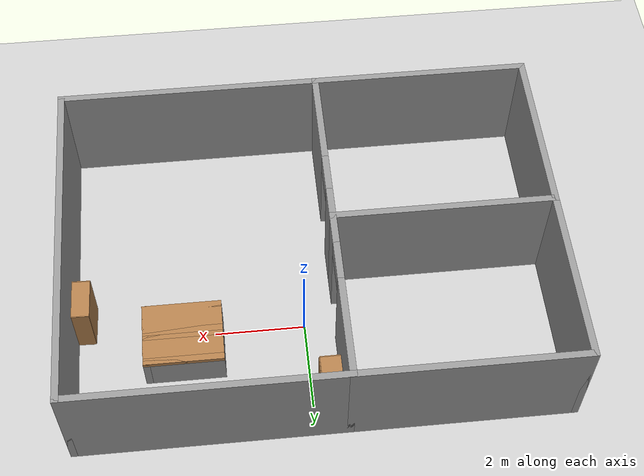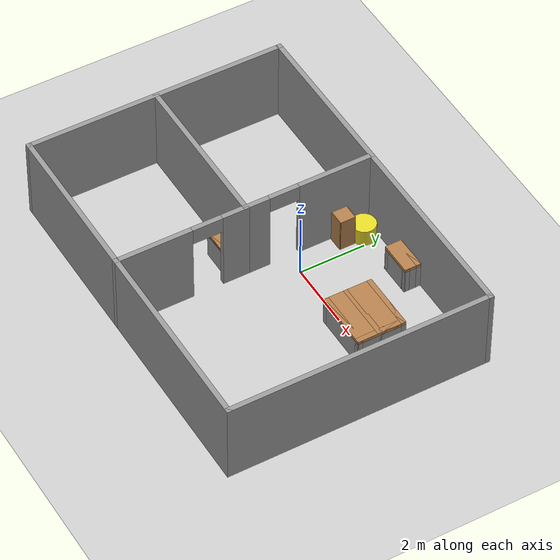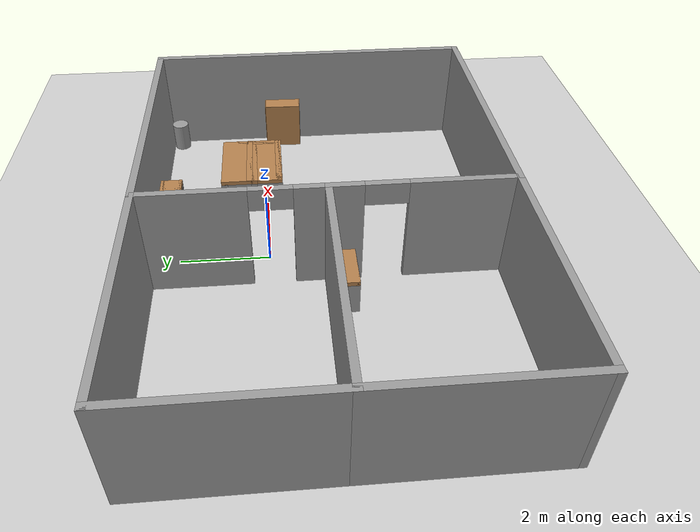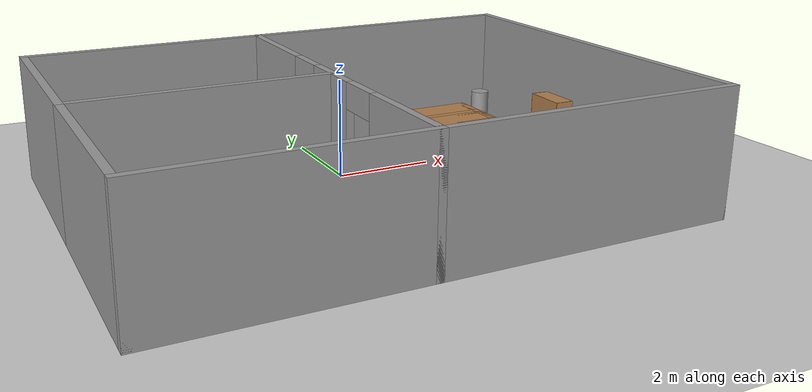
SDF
<sdf version="1.6">
 <world name="default">
  <model name="ground_plane">
   <static>1</static>
   <link name="link">
    <collision name="collision">
     <geometry><plane><normal>0 0 1</normal><size>100 100</size></plane></geometry>
     <surface><friction><ode><mu>100</mu><mu2>50</mu2></ode></friction></surface>
    </collision>
    <visual name="visual">
     <cast_shadows>0</cast_shadows>
     <geometry><plane><normal>0 0 1</normal><size>100 100</size></plane></geometry>
     <material>
      <script><uri>file://media/materials/scripts/gazebo.material</uri><name>Gazebo/Grey</name></script>
     </material>
    </visual>
   </link>
  </model>
  <model name="project.world">
   <pose>-0.23315 -1.25474 0 0 -0 0</pose>
   <link name="Wall_16">
    <collision name="Wall_16_Collision">
     <geometry><box><size>5 0.15 2.5</size></box></geometry>
     <pose>0 0 1.25 0 -0 0</pose>
    </collision>
    <visual name="Wall_16_Visual">
     <pose>0 0 1.25 0 -0 0</pose>
     <geometry><box><size>5 0.15 2.5</size></box></geometry>
     <material>
      <script><uri>file://media/materials/scripts/gazebo.material</uri><name>Gazebo/Grey</name></script>
      <ambient>1 1 1 1</ambient>
     </material>
     <meta><layer>0</layer></meta>
    </visual>
    <pose>-2.925 -3.85 0 0 -0 0</pose>
   </link>
   <link name="Wall_18">
    <collision name="Wall_18_Collision">
     <geometry><box><size>4 0.15 2.5</size></box></geometry>
     <pose>0 0 1.25 0 -0 0</pose>
    </collision>
    <visual name="Wall_18_Visual">
     <pose>0 0 1.25 0 -0 0</pose>
     <geometry><box><size>4 0.15 2.5</size></box></geometry>
     <material>
      <script><uri>file://media/materials/scripts/gazebo.material</uri><name>Gazebo/Grey</name></script>
      <ambient>1 1 1 1</ambient>
     </material>
     <meta><layer>0</layer></meta>
    </visual>
    <pose>-5.35 -1.925 0 0 -0 1.5708</pose>
   </link>
   <link name="Wall_19">
    <collision name="Wall_19_Collision">
     <geometry><box><size>4 0.15 2.5</size></box></geometry>
     <pose>0 0 1.25 0 -0 0</pose>
    </collision>
    <visual name="Wall_19_Visual">
     <pose>0 0 1.25 0 -0 0</pose>
     <geometry><box><size>4 0.15 2.5</size></box></geometry>
     <material>
      <script><uri>file://media/materials/scripts/gazebo.material</uri><name>Gazebo/Grey</name></script>
      <ambient>1 1 1 1</ambient>
     </material>
     <meta><layer>0</layer></meta>
    </visual>
    <pose>-5.35 1.925 0 0 -0 1.5708</pose>
   </link>
   <link name="Wall_20">
    <collision name="Wall_20_Collision">
     <geometry><box><size>5 0.15 2.5</size></box></geometry>
     <pose>0 0 1.25 0 -0 0</pose>
    </collision>
    <visual name="Wall_20_Visual">
     <pose>0 0 1.25 0 -0 0</pose>
     <geometry><box><size>5 0.15 2.5</size></box></geometry>
     <material>
      <script><uri>file://media/materials/scripts/gazebo.material</uri><name>Gazebo/Grey</name></script>
      <ambient>1 1 1 1</ambient>
     </material>
     <meta><layer>0</layer></meta>
    </visual>
    <pose>-2.925 3.85 0 0 -0 0</pose>
   </link>
   <link name="Wall_21">
    <pose>-0.5 1.925 0 0 0 -1.5708</pose>
    <visual name="Wall_21_Visual_0">
     <pose>-0.8375 0 1.25 0 -0 0</pose>
     <geometry><box><size>2.325 0.15 2.5</size></box></geometry>
     <material>
      <script><uri>file://media/materials/scripts/gazebo.material</uri><name>Gazebo/Grey</name></script>
      <ambient>1 1 1 1</ambient>
     </material>
     <meta><layer>0</layer></meta>
    </visual>
    <collision name="Wall_21_Collision_0">
     <geometry><box><size>2.325 0.15 2.5</size></box></geometry>
     <pose>-0.8375 0 1.25 0 -0 0</pose>
    </collision>
    <visual name="Wall_21_Visual_1">
     <pose>1.6125 0 1.25 0 -0 0</pose>
     <geometry><box><size>0.775 0.15 2.5</size></box></geometry>
     <material>
      <script><uri>file://media/materials/scripts/gazebo.material</uri><name>Gazebo/Grey</name></script>
      <ambient>1 1 1 1</ambient>
     </material>
     <meta><layer>0</layer></meta>
    </visual>
    <collision name="Wall_21_Collision_1">
     <geometry><box><size>0.775 0.15 2.5</size></box></geometry>
     <pose>1.6125 0 1.25 0 -0 0</pose>
    </collision>
    <visual name="Wall_21_Visual_2">
     <pose>0.775 0 2.25 0 -0 0</pose>
     <geometry><box><size>0.9 0.15 0.5</size></box></geometry>
     <material>
      <script><uri>file://media/materials/scripts/gazebo.material</uri><name>Gazebo/Grey</name></script>
      <ambient>1 1 1 1</ambient>
     </material>
     <meta><layer>0</layer></meta>
    </visual>
    <collision name="Wall_21_Collision_2">
     <geometry><box><size>0.9 0.15 0.5</size></box></geometry>
     <pose>0.775 0 2.25 0 -0 0</pose>
    </collision>
   </link>
   <link name="Wall_22">
    <collision name="Wall_22_Collision">
     <geometry><box><size>5 0.15 2.5</size></box></geometry>
     <pose>0 0 1.25 0 -0 0</pose>
    </collision>
    <visual name="Wall_22_Visual">
     <pose>0 0 1.25 0 -0 0</pose>
     <geometry><box><size>5 0.15 2.5</size></box></geometry>
     <material>
      <script><uri>file://media/materials/scripts/gazebo.material</uri><name>Gazebo/Grey</name></script>
      <ambient>1 1 1 1</ambient>
     </material>
     <meta><layer>0</layer></meta>
    </visual>
    <pose>-2.925 0 0 0 -0 3.14159</pose>
   </link>
   <link name="Wall_25">
    <pose>-0.5 -1.925 0 0 0 -1.5708</pose>
    <visual name="Wall_25_Visual_0">
     <pose>-1.6025 0 1.25 0 -0 0</pose>
     <geometry><box><size>0.795 0.15 2.5</size></box></geometry>
     <material>
      <script><uri>file://media/materials/scripts/gazebo.material</uri><name>Gazebo/Grey</name></script>
      <ambient>1 1 1 1</ambient>
     </material>
     <meta><layer>0</layer></meta>
    </visual>
    <collision name="Wall_25_Collision_0">
     <geometry><box><size>0.795 0.15 2.5</size></box></geometry>
     <pose>-1.6025 0 1.25 0 -0 0</pose>
    </collision>
    <visual name="Wall_25_Visual_1">
     <pose>0.8475 0 1.25 0 -0 0</pose>
     <geometry><box><size>2.305 0.15 2.5</size></box></geometry>
     <material>
      <script><uri>file://media/materials/scripts/gazebo.material</uri><name>Gazebo/Grey</name></script>
      <ambient>1 1 1 1</ambient>
     </material>
     <meta><layer>0</layer></meta>
    </visual>
    <collision name="Wall_25_Collision_1">
     <geometry><box><size>2.305 0.15 2.5</size></box></geometry>
     <pose>0.8475 0 1.25 0 -0 0</pose>
    </collision>
    <visual name="Wall_25_Visual_2">
     <pose>-0.755 0 2.25 0 -0 0</pose>
     <geometry><box><size>0.9 0.15 0.5</size></box></geometry>
     <material>
      <script><uri>file://media/materials/scripts/gazebo.material</uri><name>Gazebo/Grey</name></script>
      <ambient>1 1 1 1</ambient>
     </material>
     <meta><layer>0</layer></meta>
    </visual>
    <collision name="Wall_25_Collision_2">
     <geometry><box><size>0.9 0.15 0.5</size></box></geometry>
     <pose>-0.755 0 2.25 0 -0 0</pose>
    </collision>
   </link>
   <link name="Wall_27">
    <collision name="Wall_27_Collision">
     <geometry><box><size>6 0.15 2.5</size></box></geometry>
     <pose>0 0 1.25 0 -0 0</pose>
    </collision>
    <visual name="Wall_27_Visual">
     <pose>0 0 1.25 0 -0 0</pose>
     <geometry><box><size>6 0.15 2.5</size></box></geometry>
     <material>
      <script><uri>file://media/materials/scripts/gazebo.material</uri><name>Gazebo/Grey</name></script>
      <ambient>1 1 1 1</ambient>
     </material>
     <meta><layer>0</layer></meta>
    </visual>
    <pose>2.425 -3.85 0 0 -0 0</pose>
   </link>
   <link name="Wall_28">
    <collision name="Wall_28_Collision">
     <geometry><box><size>7.85 0.15 2.5</size></box></geometry>
     <pose>0 0 1.25 0 -0 0</pose>
    </collision>
    <visual name="Wall_28_Visual">
     <pose>0 0 1.25 0 -0 0</pose>
     <geometry><box><size>7.85 0.15 2.5</size></box></geometry>
     <material>
      <script><uri>file://media/materials/scripts/gazebo.material</uri><name>Gazebo/Grey</name></script>
      <ambient>1 1 1 1</ambient>
     </material>
     <meta><layer>0</layer></meta>
    </visual>
    <pose>5.35 0 0 0 -0 1.5708</pose>
   </link>
   <link name="Wall_30">
    <collision name="Wall_30_Collision">
     <geometry><box><size>6 0.15 2.5</size></box></geometry>
     <pose>0 0 1.25 0 -0 0</pose>
    </collision>
    <visual name="Wall_30_Visual">
     <pose>0 0 1.25 0 -0 0</pose>
     <geometry><box><size>6 0.15 2.5</size></box></geometry>
     <material>
      <script><uri>file://media/materials/scripts/gazebo.material</uri><name>Gazebo/Grey</name></script>
      <ambient>1 1 1 1</ambient>
     </material>
     <meta><layer>0</layer></meta>
    </visual>
    <pose>2.425 3.85 0 0 -0 0</pose>
   </link>
   <static>1</static>
  </model>
  <model name="bookshelf">
   <static>1</static>
   <link name="link">
    <inertial><mass>1</mass></inertial>
    <collision name="back">
     <pose>0 0.005 0.6 0 -0 0</pose>
     <geometry><box><size>0.9 0.01 1.2</size></box></geometry>
    </collision>
    <visual name="visual1">
     <pose>0 0.005 0.6 0 -0 0</pose>
     <geometry><box><size>0.9 0.01 1.2</size></box></geometry>
     <material>
      <script><uri>file://media/materials/scripts/gazebo.material</uri><name>Gazebo/Wood</name></script>
     </material>
    </visual>
    <collision name="left_side">
     <pose>0.45 -0.195 0.6 0 -0 0</pose>
     <geometry><box><size>0.02 0.4 1.2</size></box></geometry>
    </collision>
    <visual name="visual2">
     <pose>0.45 -0.195 0.6 0 -0 0</pose>
     <geometry><box><size>0.02 0.4 1.2</size></box></geometry>
     <material>
      <script><uri>file://media/materials/scripts/gazebo.material</uri><name>Gazebo/Wood</name></script>
     </material>
    </visual>
    <collision name="right_side">
     <pose>-0.45 -0.195 0.6 0 -0 0</pose>
     <geometry><box><size>0.02 0.4 1.2</size></box></geometry>
    </collision>
    <visual name="visual3">
     <pose>-0.45 -0.195 0.6 0 -0 0</pose>
     <geometry><box><size>0.02 0.4 1.2</size></box></geometry>
     <material>
      <script><uri>file://media/materials/scripts/gazebo.material</uri><name>Gazebo/Wood</name></script>
     </material>
    </visual>
    <collision name="bottom">
     <pose>0 -0.195 0.03 0 -0 0</pose>
     <geometry><box><size>0.88 0.4 0.06</size></box></geometry>
    </collision>
    <visual name="visual4">
     <pose>0 -0.195 0.03 0 -0 0</pose>
     <geometry><box><size>0.88 0.4 0.06</size></box></geometry>
     <material>
      <script><uri>file://media/materials/scripts/gazebo.material</uri><name>Gazebo/Wood</name></script>
     </material>
    </visual>
    <collision name="top">
     <pose>0 -0.195 1.19 0 -0 0</pose>
     <geometry><box><size>0.88 0.4 0.02</size></box></geometry>
    </collision>
    <visual name="visual5">
     <pose>0 -0.195 1.19 0 -0 0</pose>
     <geometry><box><size>0.88 0.4 0.02</size></box></geometry>
     <material>
      <script><uri>file://media/materials/scripts/gazebo.material</uri><name>Gazebo/Wood</name></script>
     </material>
    </visual>
    <collision name="low_shelf">
     <pose>0 -0.195 0.43 0 -0 0</pose>
     <geometry><box><size>0.88 0.4 0.02</size></box></geometry>
    </collision>
    <visual name="visual6">
     <pose>0 -0.195 0.43 0 -0 0</pose>
     <geometry><box><size>0.88 0.4 0.02</size></box></geometry>
     <material>
      <script><uri>file://media/materials/scripts/gazebo.material</uri><name>Gazebo/Wood</name></script>
     </material>
    </visual>
    <collision name="high_shelf">
     <pose>0 -0.195 0.8 0 -0 0</pose>
     <geometry><box><size>0.88 0.4 0.02</size></box></geometry>
    </collision>
    <visual name="visual7">
     <pose>0 -0.195 0.8 0 -0 0</pose>
     <geometry><box><size>0.88 0.4 0.02</size></box></geometry>
     <material>
      <script><uri>file://media/materials/scripts/gazebo.material</uri><name>Gazebo/Wood</name></script>
     </material>
    </visual>
   </link>
   <pose>4.64829 -0.47118 0 0 -0 1.5424</pose>
  </model>
  <model name="table_big_.world">
   <pose>2.68876 0.715463 0 0 -0 0</pose>
   <link name="Floor_0">
    <collision name="Floor_0_Collision">
     <geometry><box><size>1.75 0.75 0.1</size></box></geometry>
     <pose>0 0 0.05 0 -0 0</pose>
    </collision>
    <visual name="Floor_0_Visual">
     <pose>0 0 0.05 0 -0 0</pose>
     <geometry><box><size>1.75 0.75 0.1</size></box></geometry>
     <material>
      <script><uri>file://media/materials/scripts/gazebo.material</uri><name>Gazebo/Wood</name></script>
      <ambient>1 1 1 1</ambient>
     </material>
     <meta><layer>1</layer></meta>
    </visual>
    <pose>0 0 0.75 0 -0 0</pose>
   </link>
   <link name="Wall_1">
    <collision name="Wall_1_Collision">
     <geometry><box><size>0.75 0.15 0.75</size></box></geometry>
     <pose>0 0 0.375 0 -0 0</pose>
    </collision>
    <visual name="Wall_1_Visual">
     <pose>0 0 0.375 0 -0 0</pose>
     <geometry><box><size>0.75 0.15 0.75</size></box></geometry>
     <material>
      <script><uri>file://media/materials/scripts/gazebo.material</uri><name>Gazebo/Grey</name></script>
      <ambient>1 1 1 1</ambient>
     </material>
     <meta><layer>0</layer></meta>
    </visual>
    <pose>0.8 0 0 0 -0 1.5708</pose>
   </link>
   <link name="Wall_11">
    <collision name="Wall_11_Collision">
     <geometry><box><size>1.73 0.15 0.1</size></box></geometry>
     <pose>0 0 0.05 0 -0 0</pose>
    </collision>
    <visual name="Wall_11_Visual">
     <pose>0 0 0.05 0 -0 0</pose>
     <geometry><box><size>1.73 0.15 0.1</size></box></geometry>
     <material>
      <script><uri>file://media/materials/scripts/gazebo.material</uri><name>Gazebo/Wood</name></script>
      <ambient>1 1 1 1</ambient>
     </material>
     <meta><layer>1</layer></meta>
    </visual>
    <pose>0 -0.3 0.75 0 -0 3.14159</pose>
   </link>
   <link name="Wall_12">
    <collision name="Wall_12_Collision">
     <geometry><box><size>0.75 0.15 0.1</size></box></geometry>
     <pose>0 0 0.05 0 -0 0</pose>
    </collision>
    <visual name="Wall_12_Visual">
     <pose>0 0 0.05 0 -0 0</pose>
     <geometry><box><size>0.75 0.15 0.1</size></box></geometry>
     <material>
      <script><uri>file://media/materials/scripts/gazebo.material</uri><name>Gazebo/Wood</name></script>
      <ambient>1 1 1 1</ambient>
     </material>
     <meta><layer>1</layer></meta>
    </visual>
    <pose>0.8 0 0.75 0 0 -1.5708</pose>
   </link>
   <link name="Wall_13">
    <collision name="Wall_13_Collision">
     <geometry><box><size>0.16 0.15 0.1</size></box></geometry>
     <pose>0 0 0.05 0 -0 0</pose>
    </collision>
    <visual name="Wall_13_Visual">
     <pose>0 0 0.05 0 -0 0</pose>
     <geometry><box><size>0.16 0.15 0.1</size></box></geometry>
     <material>
      <script><uri>file://media/materials/scripts/gazebo.material</uri><name>Gazebo/Wood</name></script>
      <ambient>1 1 1 1</ambient>
     </material>
     <meta><layer>1</layer></meta>
    </visual>
    <pose>0.795 -0.3 0.75 0 -0 3.14159</pose>
   </link>
   <link name="Wall_3">
    <collision name="Wall_3_Collision">
     <geometry><box><size>1.75 0.15 0.75</size></box></geometry>
     <pose>0 0 0.375 0 -0 0</pose>
    </collision>
    <visual name="Wall_3_Visual">
     <pose>0 0 0.375 0 -0 0</pose>
     <geometry><box><size>1.75 0.15 0.75</size></box></geometry>
     <material>
      <script><uri>file://media/materials/scripts/gazebo.material</uri><name>Gazebo/Grey</name></script>
      <ambient>1 1 1 1</ambient>
     </material>
     <meta><layer>0</layer></meta>
    </visual>
    <pose>0 0.3 0 0 -0 3.14159</pose>
   </link>
   <link name="Wall_4">
    <collision name="Wall_4_Collision">
     <geometry><box><size>0.75 0.15 0.75</size></box></geometry>
     <pose>0 0 0.375 0 -0 0</pose>
    </collision>
    <visual name="Wall_4_Visual">
     <pose>0 0 0.375 0 -0 0</pose>
     <geometry><box><size>0.75 0.15 0.75</size></box></geometry>
     <material>
      <script><uri>file://media/materials/scripts/gazebo.material</uri><name>Gazebo/Grey</name></script>
      <ambient>1 1 1 1</ambient>
     </material>
     <meta><layer>0</layer></meta>
    </visual>
    <pose>-0.8 0 0 0 0 -1.5708</pose>
   </link>
   <link name="Wall_6">
    <collision name="Wall_6_Collision">
     <geometry><box><size>1.75 0.15 0.75</size></box></geometry>
     <pose>0 0 0.375 0 -0 0</pose>
    </collision>
    <visual name="Wall_6_Visual">
     <pose>0 0 0.375 0 -0 0</pose>
     <geometry><box><size>1.75 0.15 0.75</size></box></geometry>
     <material>
      <script><uri>file://media/materials/scripts/gazebo.material</uri><name>Gazebo/Grey</name></script>
      <ambient>1 1 1 1</ambient>
     </material>
     <meta><layer>0</layer></meta>
    </visual>
    <pose>0 -0.3 0 0 -0 0</pose>
   </link>
   <link name="Wall_9">
    <collision name="Wall_9_Collision">
     <geometry><box><size>1.75 0.15 0.1</size></box></geometry>
     <pose>0 0 0.05 0 -0 0</pose>
    </collision>
    <visual name="Wall_9_Visual">
     <pose>0 0 0.05 0 -0 0</pose>
     <geometry><box><size>1.75 0.15 0.1</size></box></geometry>
     <material>
      <script><uri>file://media/materials/scripts/gazebo.material</uri><name>Gazebo/Wood</name></script>
      <ambient>1 1 1 1</ambient>
     </material>
     <meta><layer>1</layer></meta>
    </visual>
    <pose>0 0.3 0.75 0 -0 3.14159</pose>
   </link>
   <static>1</static>
  </model>
  <model name="table_big_.world_0">
   <pose>2.687 0.002985 0 0 -0 0</pose>
   <link name="Floor_0">
    <collision name="Floor_0_Collision">
     <geometry><box><size>1.75 0.75 0.1</size></box></geometry>
     <pose>0 0 0.05 0 -0 0</pose>
    </collision>
    <visual name="Floor_0_Visual">
     <pose>0 0 0.05 0 -0 0</pose>
     <geometry><box><size>1.75 0.75 0.1</size></box></geometry>
     <material>
      <script><uri>file://media/materials/scripts/gazebo.material</uri><name>Gazebo/Wood</name></script>
      <ambient>1 1 1 1</ambient>
     </material>
     <meta><layer>1</layer></meta>
    </visual>
    <pose>0 0 0.75 0 -0 0</pose>
   </link>
   <link name="Wall_1">
    <collision name="Wall_1_Collision">
     <geometry><box><size>0.75 0.15 0.75</size></box></geometry>
     <pose>0 0 0.375 0 -0 0</pose>
    </collision>
    <visual name="Wall_1_Visual">
     <pose>0 0 0.375 0 -0 0</pose>
     <geometry><box><size>0.75 0.15 0.75</size></box></geometry>
     <material>
      <script><uri>file://media/materials/scripts/gazebo.material</uri><name>Gazebo/Grey</name></script>
      <ambient>1 1 1 1</ambient>
     </material>
     <meta><layer>0</layer></meta>
    </visual>
    <pose>0.8 0 0 0 -0 1.5708</pose>
   </link>
   <link name="Wall_11">
    <collision name="Wall_11_Collision">
     <geometry><box><size>1.73 0.15 0.1</size></box></geometry>
     <pose>0 0 0.05 0 -0 0</pose>
    </collision>
    <visual name="Wall_11_Visual">
     <pose>0 0 0.05 0 -0 0</pose>
     <geometry><box><size>1.73 0.15 0.1</size></box></geometry>
     <material>
      <script><uri>file://media/materials/scripts/gazebo.material</uri><name>Gazebo/Wood</name></script>
      <ambient>1 1 1 1</ambient>
     </material>
     <meta><layer>1</layer></meta>
    </visual>
    <pose>0 -0.3 0.75 0 -0 3.14159</pose>
   </link>
   <link name="Wall_12">
    <collision name="Wall_12_Collision">
     <geometry><box><size>0.75 0.15 0.1</size></box></geometry>
     <pose>0 0 0.05 0 -0 0</pose>
    </collision>
    <visual name="Wall_12_Visual">
     <pose>0 0 0.05 0 -0 0</pose>
     <geometry><box><size>0.75 0.15 0.1</size></box></geometry>
     <material>
      <script><uri>file://media/materials/scripts/gazebo.material</uri><name>Gazebo/Wood</name></script>
      <ambient>1 1 1 1</ambient>
     </material>
     <meta><layer>1</layer></meta>
    </visual>
    <pose>0.8 0 0.75 0 0 -1.5708</pose>
   </link>
   <link name="Wall_13">
    <collision name="Wall_13_Collision">
     <geometry><box><size>0.16 0.15 0.1</size></box></geometry>
     <pose>0 0 0.05 0 -0 0</pose>
    </collision>
    <visual name="Wall_13_Visual">
     <pose>0 0 0.05 0 -0 0</pose>
     <geometry><box><size>0.16 0.15 0.1</size></box></geometry>
     <material>
      <script><uri>file://media/materials/scripts/gazebo.material</uri><name>Gazebo/Wood</name></script>
      <ambient>1 1 1 1</ambient>
     </material>
     <meta><layer>1</layer></meta>
    </visual>
    <pose>0.795 -0.3 0.75 0 -0 3.14159</pose>
   </link>
   <link name="Wall_3">
    <collision name="Wall_3_Collision">
     <geometry><box><size>1.75 0.15 0.75</size></box></geometry>
     <pose>0 0 0.375 0 -0 0</pose>
    </collision>
    <visual name="Wall_3_Visual">
     <pose>0 0 0.375 0 -0 0</pose>
     <geometry><box><size>1.75 0.15 0.75</size></box></geometry>
     <material>
      <script><uri>file://media/materials/scripts/gazebo.material</uri><name>Gazebo/Grey</name></script>
      <ambient>1 1 1 1</ambient>
     </material>
     <meta><layer>0</layer></meta>
    </visual>
    <pose>0 0.3 0 0 -0 3.14159</pose>
   </link>
   <link name="Wall_4">
    <collision name="Wall_4_Collision">
     <geometry><box><size>0.75 0.15 0.75</size></box></geometry>
     <pose>0 0 0.375 0 -0 0</pose>
    </collision>
    <visual name="Wall_4_Visual">
     <pose>0 0 0.375 0 -0 0</pose>
     <geometry><box><size>0.75 0.15 0.75</size></box></geometry>
     <material>
      <script><uri>file://media/materials/scripts/gazebo.material</uri><name>Gazebo/Grey</name></script>
      <ambient>1 1 1 1</ambient>
     </material>
     <meta><layer>0</layer></meta>
    </visual>
    <pose>-0.8 0 0 0 0 -1.5708</pose>
   </link>
   <link name="Wall_6">
    <collision name="Wall_6_Collision">
     <geometry><box><size>1.75 0.15 0.75</size></box></geometry>
     <pose>0 0 0.375 0 -0 0</pose>
    </collision>
    <visual name="Wall_6_Visual">
     <pose>0 0 0.375 0 -0 0</pose>
     <geometry><box><size>1.75 0.15 0.75</size></box></geometry>
     <material>
      <script><uri>file://media/materials/scripts/gazebo.material</uri><name>Gazebo/Grey</name></script>
      <ambient>1 1 1 1</ambient>
     </material>
     <meta><layer>0</layer></meta>
    </visual>
    <pose>0 -0.3 0 0 -0 0</pose>
   </link>
   <link name="Wall_9">
    <collision name="Wall_9_Collision">
     <geometry><box><size>1.75 0.15 0.1</size></box></geometry>
     <pose>0 0 0.05 0 -0 0</pose>
    </collision>
    <visual name="Wall_9_Visual">
     <pose>0 0 0.05 0 -0 0</pose>
     <geometry><box><size>1.75 0.15 0.1</size></box></geometry>
     <material>
      <script><uri>file://media/materials/scripts/gazebo.material</uri><name>Gazebo/Wood</name></script>
      <ambient>1 1 1 1</ambient>
     </material>
     <meta><layer>1</layer></meta>
    </visual>
    <pose>0 0.3 0.75 0 -0 3.14159</pose>
   </link>
   <static>1</static>
  </model>
  <model name="unit_cylinder_one">
   <link name="link">
    <pose>0.029381 -0.042498 0.35039 0 -0 0</pose>
    <inertial>
     <mass>0.111836</mass>
     <inertia>
      <ixx>0.005629</ixx>
      <ixy>0</ixy>
      <ixz>0</ixz>
      <iyy>0.005629</iyy>
      <iyz>0</iyz>
      <izz>0.00224891</izz>
     </inertia>
    </inertial>
    <visual name="visual">
     <geometry><cylinder><radius>0.200544</radius><length>0.695224</length></cylinder></geometry>
     <material>
      <script><name>Gazebo/Grey</name><uri>file://media/materials/scripts/gazebo.material</uri></script>
      <shader type="pixel"><normal_map>__default__</normal_map></shader>
      <ambient>0.3 0.3 0.3 1</ambient>
      <diffuse>0.1 0.05 0.05 1</diffuse>
      <specular>0.01 0.01 0.01 1</specular>
      <emissive>0 0 0 1</emissive>
     </material>
    </visual>
    <collision name="collision">
     <geometry><cylinder><radius>0.200544</radius><length>0.695224</length></cylinder></geometry>
     <surface>
      <friction>
       <ode><mu>1</mu><mu2>1</mu2><fdir1>0 0 0</fdir1><slip1>0</slip1><slip2>0</slip2></ode>
       <torsional>
        <coefficient>1</coefficient>
        <patch_radius>0</patch_radius>
        <surface_radius>0</surface_radius>
        <use_patch_radius>1</use_patch_radius>
        <ode><slip>0</slip></ode>
       </torsional>
      </friction>
      <bounce><restitution_coefficient>0</restitution_coefficient><threshold>1e+06</threshold></bounce>
      <contact>
       <collide_without_contact>0</collide_without_contact>
       <collide_without_contact_bitmask>1</collide_without_contact_bitmask>
       <collide_bitmask>1</collide_bitmask>
       <ode>
        <soft_cfm>0</soft_cfm>
        <soft_erp>0.2</soft_erp>
        <kp>1e+13</kp>
        <kd>1</kd>
        <max_vel>0.01</max_vel>
        <min_depth>0</min_depth>
       </ode>
       <bullet>
        <split_impulse>1</split_impulse>
        <split_impulse_penetration_threshold>-0.01</split_impulse_penetration_threshold>
        <soft_cfm>0</soft_cfm>
        <soft_erp>0.2</soft_erp>
        <kp>1e+13</kp>
        <kd>1</kd>
       </bullet>
      </contact>
     </surface>
    </collision>
   </link>
   <static>1</static>
   <pose>4.79215 2.34751 0 0 -0 0</pose>
  </model>
  <model name="cabinet">
   <static>1</static>
   <link name="cabinet_bottom_plate">
    <inertial>
     <pose>0 0 -1 0 -0 0</pose>
     <inertia><ixx>2.05</ixx><ixy>0</ixy><ixz>0</ixz><iyy>2.05</iyy><iyz>0</iyz><izz>2.05</izz></inertia>
     <mass>25</mass>
    </inertial>
    <collision name="cabinet_bottom_plate_geom">
     <pose>0 0 0.01 0 -0 0</pose>
     <geometry><box><size>0.45 0.45 0.02</size></box></geometry>
    </collision>
    <visual name="cabinet_bottom_plate_geom_visual">
     <pose>0 0 0.01 0 -0 0</pose>
     <geometry><box><size>0.45 0.45 0.02</size></box></geometry>
     <material>
      <script><uri>file://media/materials/scripts/gazebo.material</uri><name>Gazebo/Wood</name></script>
     </material>
    </visual>
    <collision name="cabinet_bottom_plate_geom_cabinet_back_plate">
     <pose>0.235 0 0.51 0 -0 0</pose>
     <geometry><box><size>0.02 0.45 1.02</size></box></geometry>
    </collision>
    <visual name="cabinet_bottom_plate_geom_cabinet_back_plate_visual">
     <pose>0.235 0 0.51 0 -0 0</pose>
     <geometry><box><size>0.02 0.45 1.02</size></box></geometry>
     <material>
      <script><uri>file://media/materials/scripts/gazebo.material</uri><name>Gazebo/Wood</name></script>
     </material>
    </visual>
    <collision name="cabinet_bottom_plate_geom_cabinet_left_plate">
     <pose>0 0.235 0.51 0 -0 0</pose>
     <geometry><box><size>0.45 0.02 1.02</size></box></geometry>
    </collision>
    <visual name="cabinet_bottom_plate_geom_cabinet_left_plate_visual">
     <pose>0 0.235 0.51 0 -0 0</pose>
     <geometry><box><size>0.45 0.02 1.02</size></box></geometry>
     <material>
      <script><uri>file://media/materials/scripts/gazebo.material</uri><name>Gazebo/Wood</name></script>
     </material>
    </visual>
    <collision name="cabinet_bottom_plate_geom_cabinet_middle_plate">
     <pose>0 0 0.51 0 -0 0</pose>
     <geometry><box><size>0.45 0.45 0.02</size></box></geometry>
    </collision>
    <visual name="cabinet_bottom_plate_geom_cabinet_middle_plate_visual">
     <pose>0 0 0.51 0 -0 0</pose>
     <geometry><box><size>0.45 0.45 0.02</size></box></geometry>
     <material>
      <script><uri>file://media/materials/scripts/gazebo.material</uri><name>Gazebo/Wood</name></script>
     </material>
    </visual>
    <collision name="cabinet_bottom_plate_geom_cabinet_right_plate">
     <pose>0 -0.235 0.51 0 -0 0</pose>
     <geometry><box><size>0.45 0.02 1.02</size></box></geometry>
    </collision>
    <visual name="cabinet_bottom_plate_geom_cabinet_right_plate_visual">
     <pose>0 -0.235 0.51 0 -0 0</pose>
     <geometry><box><size>0.45 0.02 1.02</size></box></geometry>
     <material>
      <script><uri>file://media/materials/scripts/gazebo.material</uri><name>Gazebo/Wood</name></script>
     </material>
    </visual>
    <collision name="cabinet_bottom_plate_geom_cabinet_top_plate">
     <pose>0 0 1.01 0 -0 0</pose>
     <geometry><box><size>0.45 0.45 0.02</size></box></geometry>
    </collision>
    <visual name="cabinet_bottom_plate_geom_cabinet_top_plate_visual">
     <pose>0 0 1.01 0 -0 0</pose>
     <geometry><box><size>0.45 0.45 0.02</size></box></geometry>
     <material>
      <script><uri>file://media/materials/scripts/gazebo.material</uri><name>Gazebo/Wood</name></script>
     </material>
    </visual>
   </link>
   <pose>-0.425248 1.57843 0 0 -0 0</pose>
  </model>
  <model name="table_small.world_0">
   <pose>1.49526 2.26501 0 0 -0 0</pose>
   <link name="Floor_2">
    <collision name="Floor_2_Collision">
     <geometry><box><size>1 0.5 0.1</size></box></geometry>
     <pose>0 0 0.05 0 -0 0</pose>
    </collision>
    <visual name="Floor_2_Visual">
     <pose>0 0 0.05 0 -0 0</pose>
     <geometry><box><size>1 0.5 0.1</size></box></geometry>
     <material>
      <script><uri>file://media/materials/scripts/gazebo.material</uri><name>Gazebo/Wood</name></script>
      <ambient>1 1 1 1</ambient>
     </material>
     <meta><layer>1</layer></meta>
    </visual>
    <pose>0 0 0.75 0 -0 0</pose>
   </link>
   <link name="Wall_10">
    <collision name="Wall_10_Collision">
     <geometry><box><size>0.5 0.15 0.75</size></box></geometry>
     <pose>0 0 0.375 0 -0 0</pose>
    </collision>
    <visual name="Wall_10_Visual">
     <pose>0 0 0.375 0 -0 0</pose>
     <geometry><box><size>0.5 0.15 0.75</size></box></geometry>
     <material>
      <script><uri>file://media/materials/scripts/gazebo.material</uri><name>Gazebo/Grey</name></script>
      <ambient>1 1 1 1</ambient>
     </material>
     <meta><layer>0</layer></meta>
    </visual>
    <pose>0.425 0 0 0 -0 1.5708</pose>
   </link>
   <link name="Wall_11">
    <collision name="Wall_11_Collision">
     <geometry><box><size>1 0.15 0.75</size></box></geometry>
     <pose>0 0 0.375 0 -0 0</pose>
    </collision>
    <visual name="Wall_11_Visual">
     <pose>0 0 0.375 0 -0 0</pose>
     <geometry><box><size>1 0.15 0.75</size></box></geometry>
     <material>
      <script><uri>file://media/materials/scripts/gazebo.material</uri><name>Gazebo/Grey</name></script>
      <ambient>1 1 1 1</ambient>
     </material>
     <meta><layer>0</layer></meta>
    </visual>
    <pose>0 0.175 0 0 -0 3.14159</pose>
   </link>
   <link name="Wall_12">
    <collision name="Wall_12_Collision">
     <geometry><box><size>0.5 0.15 0.75</size></box></geometry>
     <pose>0 0 0.375 0 -0 0</pose>
    </collision>
    <visual name="Wall_12_Visual">
     <pose>0 0 0.375 0 -0 0</pose>
     <geometry><box><size>0.5 0.15 0.75</size></box></geometry>
     <material>
      <script><uri>file://media/materials/scripts/gazebo.material</uri><name>Gazebo/Grey</name></script>
      <ambient>1 1 1 1</ambient>
     </material>
     <meta><layer>0</layer></meta>
    </visual>
    <pose>-0.425 0 0 0 0 -1.5708</pose>
   </link>
   <link name="Wall_19">
    <collision name="Wall_19_Collision">
     <geometry><box><size>1 0.15 0.1</size></box></geometry>
     <pose>0 0 0.05 0 -0 0</pose>
    </collision>
    <visual name="Wall_19_Visual">
     <pose>0 0 0.05 0 -0 0</pose>
     <geometry><box><size>1 0.15 0.1</size></box></geometry>
     <material>
      <script><uri>file://media/materials/scripts/gazebo.material</uri><name>Gazebo/Wood</name></script>
      <ambient>1 1 1 1</ambient>
     </material>
     <meta><layer>1</layer></meta>
    </visual>
    <pose>0 -0.175 0.75 0 -0 0</pose>
   </link>
   <link name="Wall_21">
    <collision name="Wall_21_Collision">
     <geometry><box><size>1 0.15 0.1</size></box></geometry>
     <pose>0 0 0.05 0 -0 0</pose>
    </collision>
    <visual name="Wall_21_Visual">
     <pose>0 0 0.05 0 -0 0</pose>
     <geometry><box><size>1 0.15 0.1</size></box></geometry>
     <material>
      <script><uri>file://media/materials/scripts/gazebo.material</uri><name>Gazebo/Wood</name></script>
      <ambient>1 1 1 1</ambient>
     </material>
     <meta><layer>1</layer></meta>
    </visual>
    <pose>0 0.175 0.75 0 -0 3.14159</pose>
   </link>
   <link name="Wall_9">
    <collision name="Wall_9_Collision">
     <geometry><box><size>1 0.15 0.75</size></box></geometry>
     <pose>0 0 0.375 0 -0 0</pose>
    </collision>
    <visual name="Wall_9_Visual">
     <pose>0 0 0.375 0 -0 0</pose>
     <geometry><box><size>1 0.15 0.75</size></box></geometry>
     <material>
      <script><uri>file://media/materials/scripts/gazebo.material</uri><name>Gazebo/Grey</name></script>
      <ambient>1 1 1 1</ambient>
     </material>
     <meta><layer>0</layer></meta>
    </visual>
    <pose>0 -0.175 0 0 -0 0</pose>
   </link>
   <static>1</static>
  </model>
  <model name="table_small.world_1">
   <pose>-1.31391 -1.5643 0 0 -0 0</pose>
   <link name="Floor_2">
    <collision name="Floor_2_Collision">
     <geometry><box><size>1 0.5 0.1</size></box></geometry>
     <pose>0 0 0.05 0 -0 0</pose>
    </collision>
    <visual name="Floor_2_Visual">
     <pose>0 0 0.05 0 -0 0</pose>
     <geometry><box><size>1 0.5 0.1</size></box></geometry>
     <material>
      <script><uri>file://media/materials/scripts/gazebo.material</uri><name>Gazebo/Wood</name></script>
      <ambient>1 1 1 1</ambient>
     </material>
     <meta><layer>1</layer></meta>
    </visual>
    <pose>0 0 0.75 0 -0 0</pose>
   </link>
   <link name="Wall_10">
    <collision name="Wall_10_Collision">
     <geometry><box><size>0.5 0.15 0.75</size></box></geometry>
     <pose>0 0 0.375 0 -0 0</pose>
    </collision>
    <visual name="Wall_10_Visual">
     <pose>0 0 0.375 0 -0 0</pose>
     <geometry><box><size>0.5 0.15 0.75</size></box></geometry>
     <material>
      <script><uri>file://media/materials/scripts/gazebo.material</uri><name>Gazebo/Grey</name></script>
      <ambient>1 1 1 1</ambient>
     </material>
     <meta><layer>0</layer></meta>
    </visual>
    <pose>0.425 0 0 0 -0 1.5708</pose>
   </link>
   <link name="Wall_11">
    <collision name="Wall_11_Collision">
     <geometry><box><size>1 0.15 0.75</size></box></geometry>
     <pose>0 0 0.375 0 -0 0</pose>
    </collision>
    <visual name="Wall_11_Visual">
     <pose>0 0 0.375 0 -0 0</pose>
     <geometry><box><size>1 0.15 0.75</size></box></geometry>
     <material>
      <script><uri>file://media/materials/scripts/gazebo.material</uri><name>Gazebo/Grey</name></script>
      <ambient>1 1 1 1</ambient>
     </material>
     <meta><layer>0</layer></meta>
    </visual>
    <pose>0 0.175 0 0 -0 3.14159</pose>
   </link>
   <link name="Wall_12">
    <collision name="Wall_12_Collision">
     <geometry><box><size>0.5 0.15 0.75</size></box></geometry>
     <pose>0 0 0.375 0 -0 0</pose>
    </collision>
    <visual name="Wall_12_Visual">
     <pose>0 0 0.375 0 -0 0</pose>
     <geometry><box><size>0.5 0.15 0.75</size></box></geometry>
     <material>
      <script><uri>file://media/materials/scripts/gazebo.material</uri><name>Gazebo/Grey</name></script>
      <ambient>1 1 1 1</ambient>
     </material>
     <meta><layer>0</layer></meta>
    </visual>
    <pose>-0.425 0 0 0 0 -1.5708</pose>
   </link>
   <link name="Wall_19">
    <collision name="Wall_19_Collision">
     <geometry><box><size>1 0.15 0.1</size></box></geometry>
     <pose>0 0 0.05 0 -0 0</pose>
    </collision>
    <visual name="Wall_19_Visual">
     <pose>0 0 0.05 0 -0 0</pose>
     <geometry><box><size>1 0.15 0.1</size></box></geometry>
     <material>
      <script><uri>file://media/materials/scripts/gazebo.material</uri><name>Gazebo/Wood</name></script>
      <ambient>1 1 1 1</ambient>
     </material>
     <meta><layer>1</layer></meta>
    </visual>
    <pose>0 -0.175 0.75 0 -0 0</pose>
   </link>
   <link name="Wall_21">
    <collision name="Wall_21_Collision">
     <geometry><box><size>1 0.15 0.1</size></box></geometry>
     <pose>0 0 0.05 0 -0 0</pose>
    </collision>
    <visual name="Wall_21_Visual">
     <pose>0 0 0.05 0 -0 0</pose>
     <geometry><box><size>1 0.15 0.1</size></box></geometry>
     <material>
      <script><uri>file://media/materials/scripts/gazebo.material</uri><name>Gazebo/Wood</name></script>
      <ambient>1 1 1 1</ambient>
     </material>
     <meta><layer>1</layer></meta>
    </visual>
    <pose>0 0.175 0.75 0 -0 3.14159</pose>
   </link>
   <link name="Wall_9">
    <collision name="Wall_9_Collision">
     <geometry><box><size>1 0.15 0.75</size></box></geometry>
     <pose>0 0 0.375 0 -0 0</pose>
    </collision>
    <visual name="Wall_9_Visual">
     <pose>0 0 0.375 0 -0 0</pose>
     <geometry><box><size>1 0.15 0.75</size></box></geometry>
     <material>
      <script><uri>file://media/materials/scripts/gazebo.material</uri><name>Gazebo/Grey</name></script>
      <ambient>1 1 1 1</ambient>
     </material>
     <meta><layer>0</layer></meta>
    </visual>
    <pose>0 -0.175 0 0 -0 0</pose>
   </link>
   <static>1</static>
  </model>
  <model name="unit_cylinder_two_0">
   <link name="link">
    <pose>0.189745 0.249697 0 0 -0 0</pose>
    <inertial>
     <mass>0.487334</mass>
     <inertia>
      <ixx>0.0554546</ixx>
      <ixy>0</ixy>
      <ixz>0</ixz>
      <iyy>0.0554546</iyy>
      <iyz>0</iyz>
      <izz>0.0296869</izz>
     </inertia>
    </inertial>
    <visual name="visual">
     <geometry><cylinder><radius>0.349047</radius><length>1</length></cylinder></geometry>
     <material>
      <script><name>Gazebo/Yellow</name><uri>file://media/materials/scripts/gazebo.material</uri></script>
      <shader type="pixel"><normal_map>__default__</normal_map></shader>
      <ambient>0.4 0.3 0.1 1</ambient>
      <diffuse>0.4 0.7 0.9 1</diffuse>
      <specular>0.01 0.01 0.01 1</specular>
      <emissive>0 0 0 1</emissive>
     </material>
    </visual>
    <collision name="collision">
     <geometry><cylinder><radius>0.349047</radius><length>1</length></cylinder></geometry>
     <surface>
      <friction>
       <ode><mu>1</mu><mu2>1</mu2><fdir1>0 0 0</fdir1><slip1>0</slip1><slip2>0</slip2></ode>
       <torsional>
        <coefficient>1</coefficient>
        <patch_radius>0</patch_radius>
        <surface_radius>0</surface_radius>
        <use_patch_radius>1</use_patch_radius>
        <ode><slip>0</slip></ode>
       </torsional>
      </friction>
      <bounce><restitution_coefficient>0</restitution_coefficient><threshold>1e+06</threshold></bounce>
      <contact>
       <collide_without_contact>0</collide_without_contact>
       <collide_without_contact_bitmask>1</collide_without_contact_bitmask>
       <collide_bitmask>1</collide_bitmask>
       <ode>
        <soft_cfm>0</soft_cfm>
        <soft_erp>0.2</soft_erp>
        <kp>1e+13</kp>
        <kd>1</kd>
        <max_vel>0.01</max_vel>
        <min_depth>0</min_depth>
       </ode>
       <bullet>
        <split_impulse>1</split_impulse>
        <split_impulse_penetration_threshold>-0.01</split_impulse_penetration_threshold>
        <soft_cfm>0</soft_cfm>
        <soft_erp>0.2</soft_erp>
        <kp>1e+13</kp>
        <kd>1</kd>
       </bullet>
      </contact>
     </surface>
    </collision>
   </link>
   <static>1</static>
   <pose>-0.501405 1.91085 0 0 -0 0</pose>
  </model>
 </world>
</sdf>
